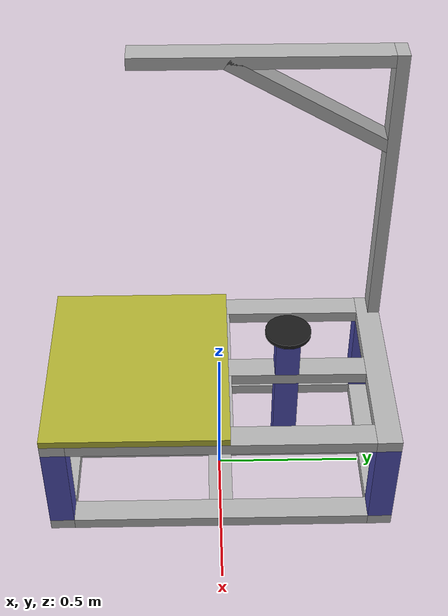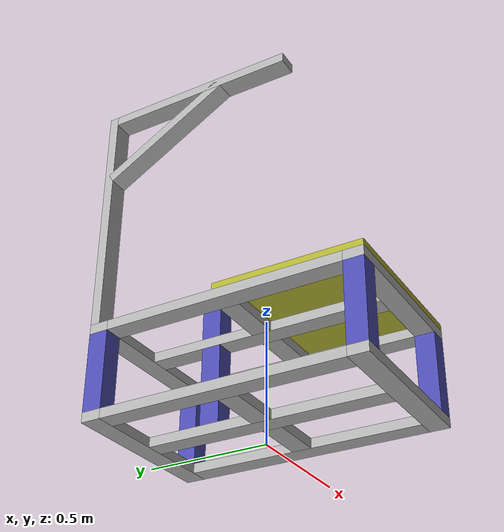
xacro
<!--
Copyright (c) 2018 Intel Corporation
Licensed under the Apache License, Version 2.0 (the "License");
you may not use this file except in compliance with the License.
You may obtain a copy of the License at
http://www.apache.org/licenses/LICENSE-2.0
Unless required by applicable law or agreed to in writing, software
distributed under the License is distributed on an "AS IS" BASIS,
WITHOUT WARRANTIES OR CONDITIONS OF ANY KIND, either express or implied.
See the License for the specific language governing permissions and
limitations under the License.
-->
<?xml version="1.0"?>

<robot xmlns:xacro="http://ros.org/wiki/xacro" name="platform">

  <!-- Platform parameters -->
  <xacro:property name="width" value="0.08"/>

  <xacro:property name="thickness" value="0.04"/>

  <xacro:property name="platform_lift" value="0.075"/>

  <xacro:property name="platform_height" value="0.32"/>

  <xacro:property name="platform_width" value="0.7"/>

  <xacro:property name="platform_length" value="0.98"/>

  <link name="platform_base" />

  <xacro:macro name="beam_support" params="prefix:='' xyz:='0 0 0' rpy:='0 0 0' z=''">
    <link name="beam_support_${prefix}">
      <visual>
        <origin xyz="0 0 0" rpy="0 0 0"/>
        <geometry>
          <box size="${width} ${width} ${z}" />
        </geometry>
        <material name="grey_blue">
          <color rgba="0.3 0.3 0.7 1.0"/>
        </material>
      </visual>
      <collision>
        <origin xyz="0 0 0" rpy="0 0 0"/>
        <geometry>
          <box size="${width} ${width} ${z}" />
        </geometry>
      </collision>
    </link>
    <joint name="platform_base_beam_support_${prefix}_joint" type="fixed">
      <parent link="platform_base" />
      <child link = "beam_support_${prefix}" />
      <origin xyz="${xyz}"
              rpy="${rpy}" />
    </joint>
    <!-- Individual link colouring still needed in Gazebo 2.x -->
    <gazebo reference="beam_support_${prefix}"><material>Gazebo/Blue</material></gazebo>
  </xacro:macro>

  <xacro:macro name="beam" params="prefix:='' xyz:='0 0 0' rpy:='0 0 0' x:='0.0' y:='0.0'">
    <link name="beam_${prefix}">
      <visual>
        <origin xyz="0 0 0" rpy="0 0 0"/>
        <geometry>
          <box size="${x} ${y} ${thickness}" />
        </geometry>
        <material name="dark_grey">
          <color rgba="0.7 0.7 0.7 1.0"/>
        </material>
      </visual>
      <collision>
        <origin xyz="0 0 0" rpy="0 0 0"/>
        <geometry>
          <box size="${x} ${y} ${thickness}" />
        </geometry>
      </collision>
    </link>
    <joint name="platform_base_beam_${prefix}_joint" type="fixed">
      <parent link="platform_base" />
      <child link = "beam_${prefix}" />
      <origin xyz="${xyz}"
              rpy="${rpy}" />
    </joint>
    <!-- Individual link colouring still needed in Gazebo 2.x -->
    <gazebo reference="beam_${prefix}"><material>Gazebo/Grey</material></gazebo>
  </xacro:macro>

  <!-- beam_support_front_right link -->
  <xacro:beam_support prefix="front_right"
                      xyz="${-(platform_width / 2) + (width /2)}
                           ${-(platform_length / 2) - (width /2)}
                           ${platform_lift + thickness + (platform_height / 2)}"
                      rpy="0.0 0.0 0.0"
                      z="${platform_height}">
  </xacro:beam_support>

  <!-- beam_support_front_left link -->
  <xacro:beam_support prefix="front_left"
                      xyz="${(platform_width / 2) - (width /2)}
                           ${-(platform_length / 2) - (width /2)}
                           ${platform_lift + thickness + (platform_height / 2)}"
                      rpy="0.0 0.0 0.0"
                      z="${platform_height}">
  </xacro:beam_support>

  <!-- beam_support_back_right link -->
  <xacro:beam_support prefix="back_right"
                      xyz="${-(platform_width / 2) + (width /2)}
                           ${(platform_length / 2) + (width /2)}
                           ${platform_lift + thickness + (platform_height / 2)}"
                      rpy="0.0 0.0 0.0"
                      z="${platform_height}">
  </xacro:beam_support>

  <!-- beam_support_back_left link -->
  <xacro:beam_support prefix="back_left"
                      xyz="${(platform_width / 2) - (width /2)}
                           ${(platform_length / 2) + (width /2)}
                           ${platform_lift + thickness + (platform_height / 2)}"
                      rpy="0.0 0.0 0.0"
                      z="${platform_height}">
  </xacro:beam_support>

  <!-- beam_support_robot_bottom link -->
  <xacro:beam_support prefix="robot_bottom"
                      xyz="0.0
                           ${(platform_length / 2) -0.225 - (width /2)}
                           ${platform_lift + thickness + (platform_height / 2)}"
                      rpy="0.0 0.0 0.0"
                      z="${platform_height}">
  </xacro:beam_support>

  <!-- beam_support_robot_top link -->
  <xacro:beam_support prefix="robot_top"
                      xyz="0.0
                           ${(platform_length / 2) -0.225 - (width /2)}
                           ${platform_lift + platform_height + (thickness * 2) + (0.15 / 2)}"
                      rpy="0.0 0.0 0.0"
                      z="0.15">
  </xacro:beam_support>

  <!-- beam_middle_bottom link -->
  <xacro:beam prefix="middle_bottom"
                    xyz="0.0 0.0 ${platform_lift + (thickness / 2)}"
                    rpy="0.0 0.0 0.0"
                    x="${width}"
                    y="${platform_length}">
  </xacro:beam>

  <!-- beam_middle_top link -->
  <xacro:beam prefix="middle_top"
                    xyz="0.0 0.0 ${platform_lift + thickness + platform_height + (thickness / 2)}"
                    rpy="0.0 0.0 0.0"
                    x="${width}"
                    y="${platform_length}">
  </xacro:beam>

  <!-- beam_left_bottom link -->
  <xacro:beam prefix="left_bottom"
                    xyz="${(platform_width / 2) - (width / 2)}
                         0.0
                         ${platform_lift + (thickness / 2)}"
                    rpy="0.0 0.0 0.0"
                    x="${width}"
                    y="${platform_length}">
  </xacro:beam>

  <!-- beam_left_top link -->
  <xacro:beam prefix="left_top"
                    xyz="${(platform_width / 2) - (width / 2)}
                         0.0
                         ${platform_lift + thickness + platform_height + (thickness / 2)}"
                    rpy="0.0 0.0 0.0"
                    x="${width}"
                    y="${platform_length}">
  </xacro:beam>

  <!-- beam_right_bottom link -->
  <xacro:beam prefix="right_bottom"
                    xyz="${-(platform_width / 2) + (width / 2)}
                         0.0
                         ${platform_lift + (thickness / 2)}"
                    rpy="0.0 0.0 0.0"
                    x="${width}"
                    y="${platform_length}">
  </xacro:beam>

  <!-- beam_right_top link -->
  <xacro:beam prefix="right_top"
                    xyz="${-(platform_width / 2) + (width / 2)}
                         0.0
                         ${platform_lift + thickness + platform_height + (thickness / 2)}"
                    rpy="0.0 0.0 0.0"
                    x="${width}"
                    y="${platform_length}">
  </xacro:beam>

  <!-- beam_front_bottom link -->
  <xacro:beam prefix="front_bottom"
                    xyz="0.0
                         ${-(platform_length / 2) - (width / 2)}
                         ${platform_lift + (thickness / 2)}"
                    rpy="0.0 0.0 0.0"
                    x="${platform_width}"
                    y="${width}">
  </xacro:beam>

  <!-- beam_front_top link -->
  <xacro:beam prefix="front_top"
                    xyz="0.0
                         ${-(platform_length / 2) - (width / 2)}
                         ${platform_lift + thickness + platform_height + (thickness / 2)}"
                    rpy="0.0 0.0 0.0"
                    x="${platform_width}"
                    y="${width}">
  </xacro:beam>

  <!-- beam_back_bottom link -->
  <xacro:beam prefix="back_bottom"
                    xyz="0.0
                         ${(platform_length / 2) + (width / 2)}
                         ${platform_lift + (thickness / 2)}"
                    rpy="0.0 0.0 0.0"
                    x="${platform_width }"
                    y="${width}">
  </xacro:beam>

  <!-- beam_back_top link -->
  <xacro:beam prefix="back_top"
                    xyz="0.0
                         ${(platform_length / 2) + (width / 2)}
                         ${platform_lift + thickness + platform_height + (thickness / 2)}"
                    rpy="0.0 0.0 0.0"
                    x="${platform_width}"
                    y="${width}">
  </xacro:beam>

  <!-- beam_connect_left_bottom link -->
  <xacro:beam prefix="connect_left_bottom"
                    xyz="${platform_width / 4 - (width * 1.5) / 2 + (width * 0.5)}
                         0.0
                         ${platform_lift + (thickness / 2)}"
                    rpy="0.0 0.0 0.0"
                    x="${platform_width / 2 - (width * 1.5)}"
                    y="${width}">
  </xacro:beam>

  <!-- beam_connect_left_top link -->
  <xacro:beam prefix="connect_left_top"
                    xyz="${platform_width / 4 - (width * 1.5) / 2 + (width * 0.5)}
                         0.0
                         ${platform_lift + thickness + platform_height + (thickness / 2)}"
                    rpy="0.0 0.0 0.0"
                    x="${platform_width / 2 - (width * 1.5)}"
                    y="${width}">
  </xacro:beam>

  <!-- beam_connect_right_bottom link -->
  <xacro:beam prefix="connect_right_bottom"
                    xyz="${-platform_width / 4 + (width * 1.5) / 2 - (width * 0.5)}
                         0.0
                         ${platform_lift + (thickness / 2)}"
                    rpy="0.0 0.0 0.0"
                    x="${platform_width / 2 - (width * 1.5)}"
                    y="${width}">
  </xacro:beam>

  <!-- beam_connect_right_top link -->
  <xacro:beam prefix="connect_right_top"
                    xyz="${-platform_width / 4 + (width * 1.5) / 2 - (width * 0.5)}
                         0.0
                         ${platform_lift + thickness + platform_height + (thickness / 2)}"
                    rpy="0.0 0.0 0.0"
                    x="${platform_width / 2 - (width * 1.5)}"
                    y="${width}">
  </xacro:beam>

  <!-- beam_camera_vertical link -->
  <xacro:beam prefix="camera_vertical"
                    xyz="${-(platform_width / 2) + (width / 2)}
                         ${(platform_length / 2) + (width / 2) + (thickness / 2)}
                         ${platform_lift + (thickness * 2) + platform_height + (1.0 / 2)}"
                    rpy="${pi / 2} 0.0 0.0"
                    x="${width}"
                    y="1.0">
  </xacro:beam>

  <!-- beam_camera_horizontal link -->
  <xacro:beam prefix="camera_horizontal"
                    xyz="${-(platform_width / 2) + (width / 2)}
                         ${(platform_length / 2) + (width / 2) - (0.8 / 2)}
                         ${platform_lift + (thickness * 2) + platform_height + 1.0 - (thickness / 2)}"
                    rpy="0.0 0.0 0.0"
                    x="${width}"
                    y="0.8">
  </xacro:beam>

  <!-- beam_camera_tilt link -->
  <xacro:beam prefix="camera_tilt"
                    xyz="${-(platform_width / 2) + (width / 2)}
                         0.285
                         ${platform_lift + (thickness * 2) + platform_height + 0.85 - (thickness / 2)}"
                    rpy="-${pi / 6} 0.0 0.0"
                    x="${width}"
                    y="0.59">
  </xacro:beam>

  <link name="operation_surface">
    <visual>
      <origin xyz="0 0 -0.0125" rpy="0 0 0"/>
      <geometry>
        <box size="0.7 0.6 0.025" />
      </geometry>
      <material name="grey_yellow">
        <color rgba="0.7 0.7 0.2 1.0"/>
      </material>
    </visual>
    <collision>
      <origin xyz="0 0 -0.0125" rpy="0 0 0"/>
      <geometry>
        <box size="0.7 0.6 0.025" />
      </geometry>
    </collision>
  </link>
  <joint name="platform_base_operation_surface_joint" type="fixed">
    <parent link="platform_base" />
    <child link = "operation_surface" />
    <origin xyz="0.0
                 ${-(platform_length / 2) - width + (0.6 / 2)}
                 ${platform_lift + (thickness * 2) + platform_height + 0.025}"
            rpy="0.0 0.0 0.0" />
  </joint>
  <!-- Individual link colouring still needed in Gazebo 2.x -->
  <gazebo reference="operation_surface"><material>Gazebo/Wood</material></gazebo>

  <link name="robot_install_plate">
    <visual>
      <origin xyz="0 0 0" rpy="0 0 0"/>
      <geometry>
        <cylinder radius="${0.15 / 2}" length="0.015"/>
      </geometry>
      <material name="dark_black">
        <color rgba="0.1 0.1 0.1 1.0"/>
      </material>
    </visual>
    <collision>
      <origin xyz="0 0 0" rpy="0 0 0"/>
      <geometry>
        <cylinder radius="${0.15 / 2}" length="0.015"/>
      </geometry>
    </collision>
  </link>
  <joint name="platform_base_robot_install_plate_joint" type="fixed">
    <parent link="beam_support_robot_top" />
    <child link = "robot_install_plate" />
    <origin xyz="0.0
                 0.0
                 ${0.015 / 2 + 0.15 / 2}"
            rpy="0.0 0.0 0.0" />
  </joint>
  <!-- Individual link colouring still needed in Gazebo 2.x -->
  <gazebo reference="robot_install_plate"><material>Gazebo/FlatBlack</material></gazebo>

</robot>
